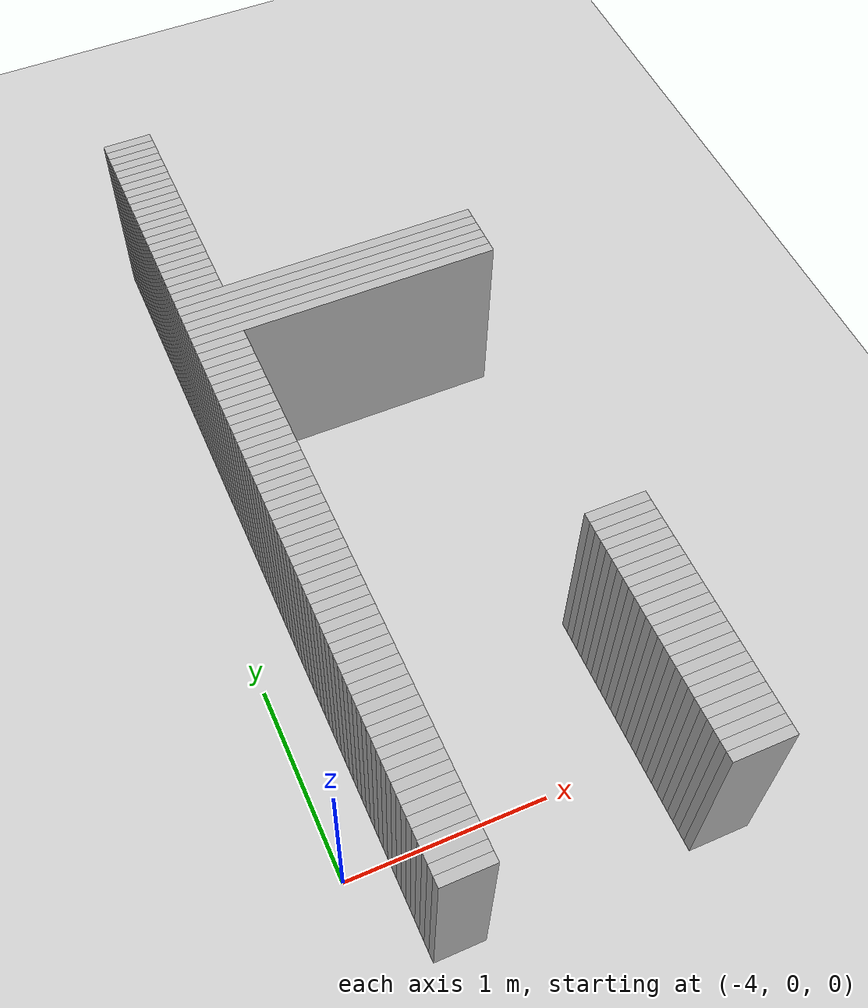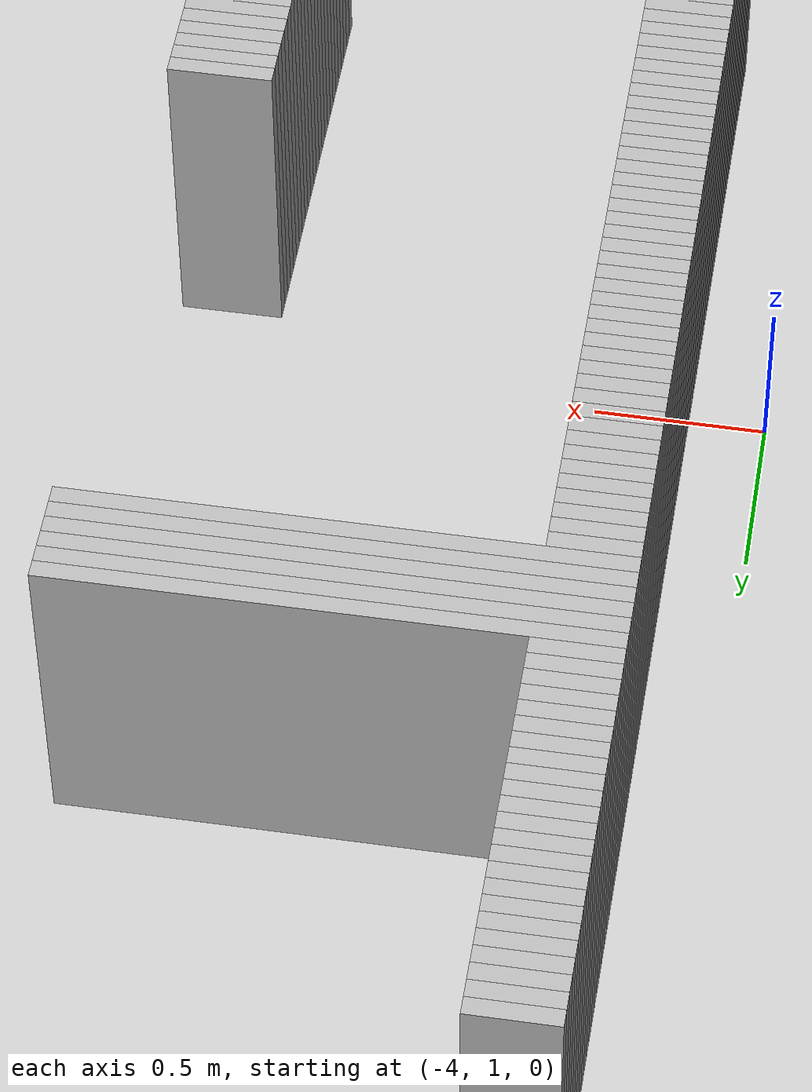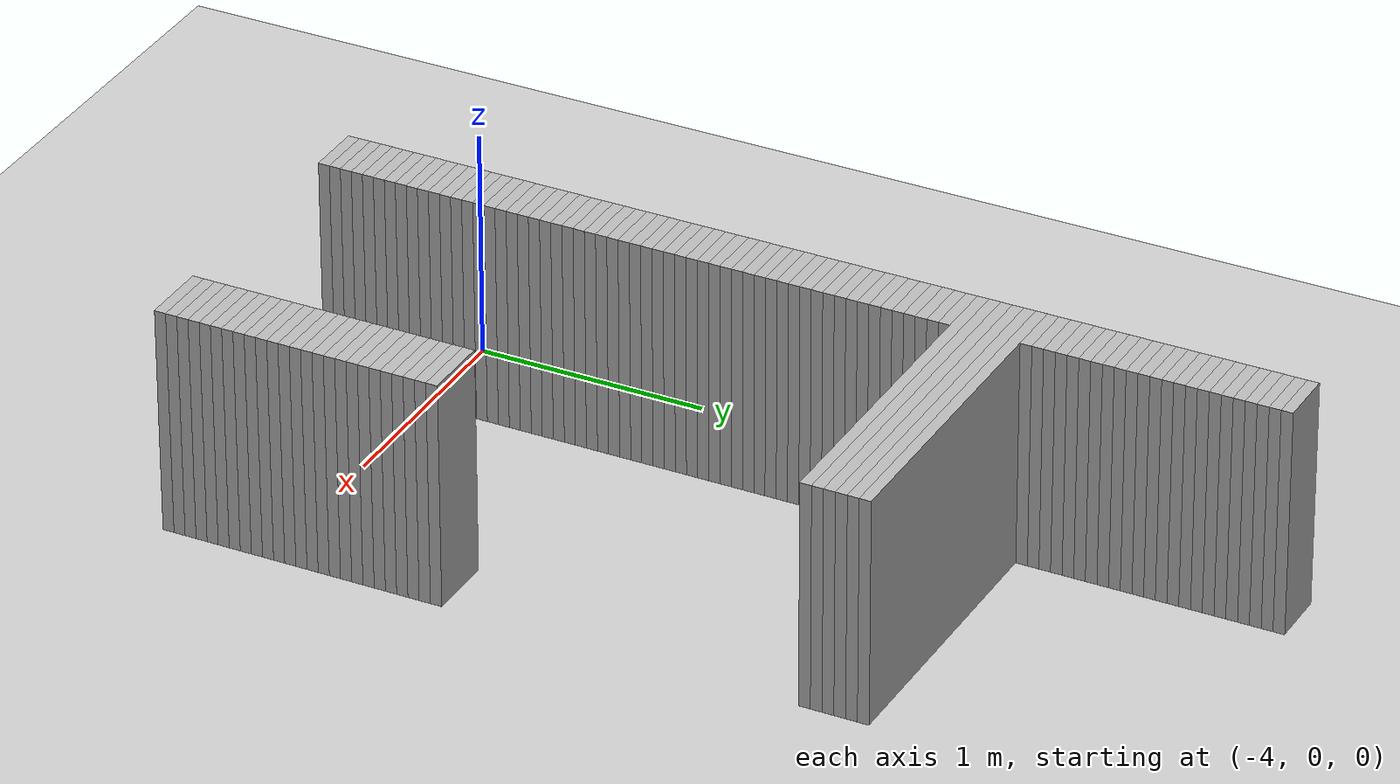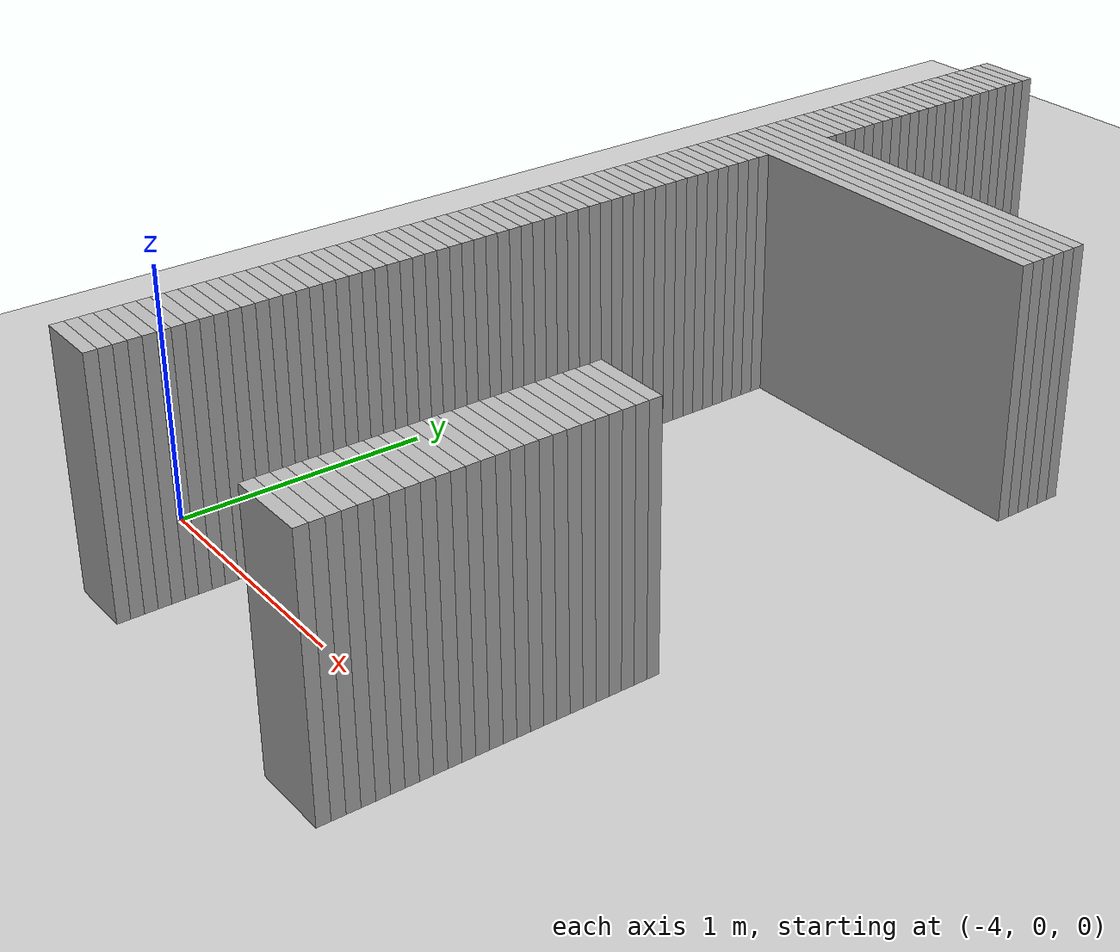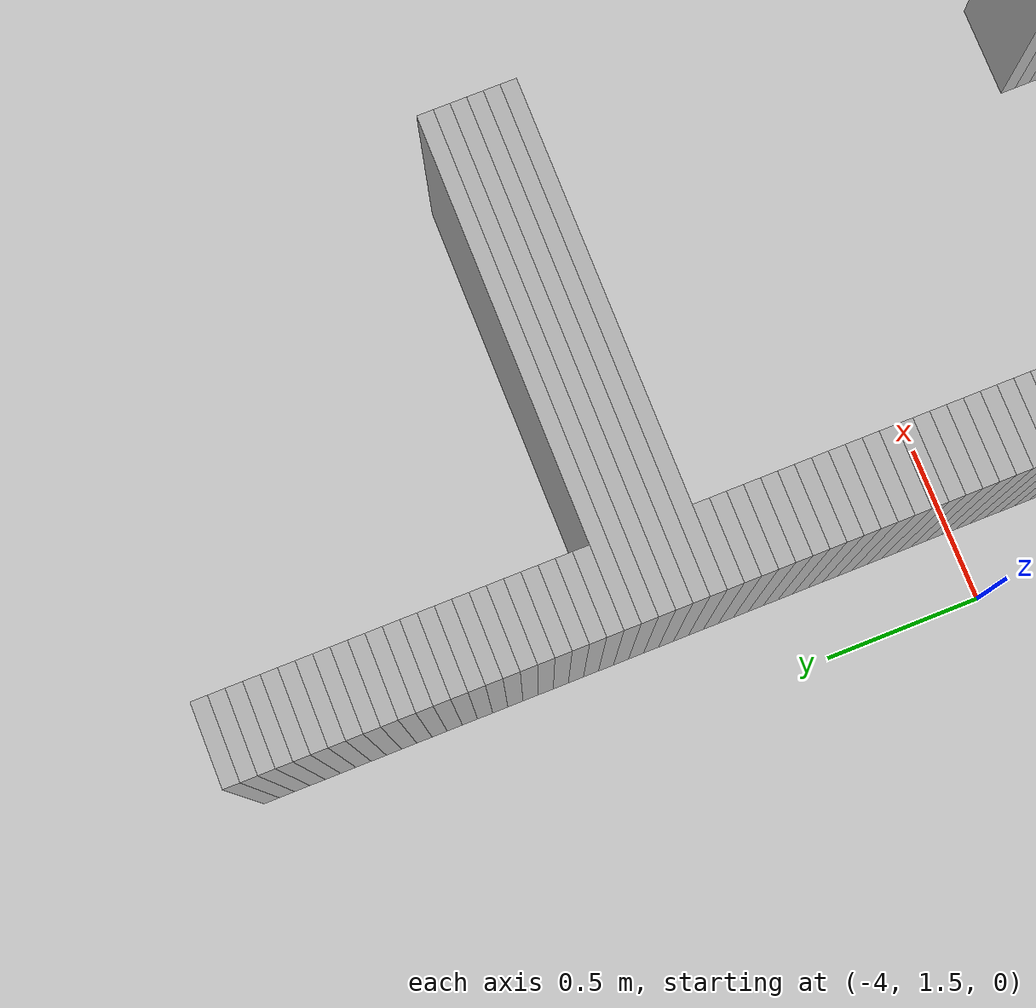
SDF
<sdf version="1.6">
 <world name="maze">
  <include><uri>model://ground_plane</uri></include>
  <include><uri>model://sun</uri></include>
  <model name="wall_0_0">
   <static>true</static>
   <pose>-3.6500000000000004 3.75 0.5 0 0 0</pose>
   <link name="link">
    <collision name="collision"><geometry><box><size>0.25 0.05 1.0</size></box></geometry></collision>
    <visual name="visual"><geometry><box><size>0.25 0.05 1.0</size></box></geometry></visual>
   </link>
  </model>
  <model name="wall_0_1">
   <static>true</static>
   <pose>-3.6500000000000004 3.7 0.5 0 0 0</pose>
   <link name="link">
    <collision name="collision"><geometry><box><size>0.25 0.05 1.0</size></box></geometry></collision>
    <visual name="visual"><geometry><box><size>0.25 0.05 1.0</size></box></geometry></visual>
   </link>
  </model>
  <model name="wall_0_2">
   <static>true</static>
   <pose>-3.6500000000000004 3.6500000000000004 0.5 0 0 0</pose>
   <link name="link">
    <collision name="collision"><geometry><box><size>0.25 0.05 1.0</size></box></geometry></collision>
    <visual name="visual"><geometry><box><size>0.25 0.05 1.0</size></box></geometry></visual>
   </link>
  </model>
  <model name="wall_0_3">
   <static>true</static>
   <pose>-3.6500000000000004 3.6 0.5 0 0 0</pose>
   <link name="link">
    <collision name="collision"><geometry><box><size>0.25 0.05 1.0</size></box></geometry></collision>
    <visual name="visual"><geometry><box><size>0.25 0.05 1.0</size></box></geometry></visual>
   </link>
  </model>
  <model name="wall_0_4">
   <static>true</static>
   <pose>-3.6500000000000004 3.5500000000000003 0.5 0 0 0</pose>
   <link name="link">
    <collision name="collision"><geometry><box><size>0.25 0.05 1.0</size></box></geometry></collision>
    <visual name="visual"><geometry><box><size>0.25 0.05 1.0</size></box></geometry></visual>
   </link>
  </model>
  <model name="wall_0_5">
   <static>true</static>
   <pose>-3.6500000000000004 3.5 0.5 0 0 0</pose>
   <link name="link">
    <collision name="collision"><geometry><box><size>0.25 0.05 1.0</size></box></geometry></collision>
    <visual name="visual"><geometry><box><size>0.25 0.05 1.0</size></box></geometry></visual>
   </link>
  </model>
  <model name="wall_0_6">
   <static>true</static>
   <pose>-3.6500000000000004 3.45 0.5 0 0 0</pose>
   <link name="link">
    <collision name="collision"><geometry><box><size>0.25 0.05 1.0</size></box></geometry></collision>
    <visual name="visual"><geometry><box><size>0.25 0.05 1.0</size></box></geometry></visual>
   </link>
  </model>
  <model name="wall_0_7">
   <static>true</static>
   <pose>-3.6500000000000004 3.4000000000000004 0.5 0 0 0</pose>
   <link name="link">
    <collision name="collision"><geometry><box><size>0.25 0.05 1.0</size></box></geometry></collision>
    <visual name="visual"><geometry><box><size>0.25 0.05 1.0</size></box></geometry></visual>
   </link>
  </model>
  <model name="wall_0_8">
   <static>true</static>
   <pose>-3.6500000000000004 3.35 0.5 0 0 0</pose>
   <link name="link">
    <collision name="collision"><geometry><box><size>0.25 0.05 1.0</size></box></geometry></collision>
    <visual name="visual"><geometry><box><size>0.25 0.05 1.0</size></box></geometry></visual>
   </link>
  </model>
  <model name="wall_0_9">
   <static>true</static>
   <pose>-3.6500000000000004 3.3000000000000003 0.5 0 0 0</pose>
   <link name="link">
    <collision name="collision"><geometry><box><size>0.25 0.05 1.0</size></box></geometry></collision>
    <visual name="visual"><geometry><box><size>0.25 0.05 1.0</size></box></geometry></visual>
   </link>
  </model>
  <model name="wall_0_10">
   <static>true</static>
   <pose>-3.6500000000000004 3.25 0.5 0 0 0</pose>
   <link name="link">
    <collision name="collision"><geometry><box><size>0.25 0.05 1.0</size></box></geometry></collision>
    <visual name="visual"><geometry><box><size>0.25 0.05 1.0</size></box></geometry></visual>
   </link>
  </model>
  <model name="wall_0_11">
   <static>true</static>
   <pose>-3.6500000000000004 3.2 0.5 0 0 0</pose>
   <link name="link">
    <collision name="collision"><geometry><box><size>0.25 0.05 1.0</size></box></geometry></collision>
    <visual name="visual"><geometry><box><size>0.25 0.05 1.0</size></box></geometry></visual>
   </link>
  </model>
  <model name="wall_0_12">
   <static>true</static>
   <pose>-3.6500000000000004 3.1500000000000004 0.5 0 0 0</pose>
   <link name="link">
    <collision name="collision"><geometry><box><size>0.25 0.05 1.0</size></box></geometry></collision>
    <visual name="visual"><geometry><box><size>0.25 0.05 1.0</size></box></geometry></visual>
   </link>
  </model>
  <model name="wall_0_13">
   <static>true</static>
   <pose>-3.6500000000000004 3.1 0.5 0 0 0</pose>
   <link name="link">
    <collision name="collision"><geometry><box><size>0.25 0.05 1.0</size></box></geometry></collision>
    <visual name="visual"><geometry><box><size>0.25 0.05 1.0</size></box></geometry></visual>
   </link>
  </model>
  <model name="wall_0_14">
   <static>true</static>
   <pose>-3.6500000000000004 3.0500000000000003 0.5 0 0 0</pose>
   <link name="link">
    <collision name="collision"><geometry><box><size>0.25 0.05 1.0</size></box></geometry></collision>
    <visual name="visual"><geometry><box><size>0.25 0.05 1.0</size></box></geometry></visual>
   </link>
  </model>
  <model name="wall_0_15">
   <static>true</static>
   <pose>-3.6500000000000004 3.0 0.5 0 0 0</pose>
   <link name="link">
    <collision name="collision"><geometry><box><size>0.25 0.05 1.0</size></box></geometry></collision>
    <visual name="visual"><geometry><box><size>0.25 0.05 1.0</size></box></geometry></visual>
   </link>
  </model>
  <model name="wall_0_16">
   <static>true</static>
   <pose>-3.6500000000000004 2.95 0.5 0 0 0</pose>
   <link name="link">
    <collision name="collision"><geometry><box><size>0.25 0.05 1.0</size></box></geometry></collision>
    <visual name="visual"><geometry><box><size>0.25 0.05 1.0</size></box></geometry></visual>
   </link>
  </model>
  <model name="wall_0_17">
   <static>true</static>
   <pose>-3.6500000000000004 2.9000000000000004 0.5 0 0 0</pose>
   <link name="link">
    <collision name="collision"><geometry><box><size>0.25 0.05 1.0</size></box></geometry></collision>
    <visual name="visual"><geometry><box><size>0.25 0.05 1.0</size></box></geometry></visual>
   </link>
  </model>
  <model name="wall_0_18">
   <static>true</static>
   <pose>-3.6500000000000004 2.85 0.5 0 0 0</pose>
   <link name="link">
    <collision name="collision"><geometry><box><size>0.25 0.05 1.0</size></box></geometry></collision>
    <visual name="visual"><geometry><box><size>0.25 0.05 1.0</size></box></geometry></visual>
   </link>
  </model>
  <model name="wall_0_19">
   <static>true</static>
   <pose>-3.6500000000000004 2.8000000000000003 0.5 0 0 0</pose>
   <link name="link">
    <collision name="collision"><geometry><box><size>0.25 0.05 1.0</size></box></geometry></collision>
    <visual name="visual"><geometry><box><size>0.25 0.05 1.0</size></box></geometry></visual>
   </link>
  </model>
  <model name="wall_0_20">
   <static>true</static>
   <pose>-3.6500000000000004 2.75 0.5 0 0 0</pose>
   <link name="link">
    <collision name="collision"><geometry><box><size>0.25 0.05 1.0</size></box></geometry></collision>
    <visual name="visual"><geometry><box><size>0.25 0.05 1.0</size></box></geometry></visual>
   </link>
  </model>
  <model name="wall_0_21">
   <static>true</static>
   <pose>-3.6500000000000004 2.7 0.5 0 0 0</pose>
   <link name="link">
    <collision name="collision"><geometry><box><size>0.25 0.05 1.0</size></box></geometry></collision>
    <visual name="visual"><geometry><box><size>0.25 0.05 1.0</size></box></geometry></visual>
   </link>
  </model>
  <model name="wall_0_22">
   <static>true</static>
   <pose>-3.6500000000000004 2.6500000000000004 0.5 0 0 0</pose>
   <link name="link">
    <collision name="collision"><geometry><box><size>0.25 0.05 1.0</size></box></geometry></collision>
    <visual name="visual"><geometry><box><size>0.25 0.05 1.0</size></box></geometry></visual>
   </link>
  </model>
  <model name="wall_0_23">
   <static>true</static>
   <pose>-3.0 2.6 0.5 0 0 0</pose>
   <link name="link">
    <collision name="collision"><geometry><box><size>1.55 0.05 1.0</size></box></geometry></collision>
    <visual name="visual"><geometry><box><size>1.55 0.05 1.0</size></box></geometry></visual>
   </link>
  </model>
  <model name="wall_0_24">
   <static>true</static>
   <pose>-3.0 2.5500000000000003 0.5 0 0 0</pose>
   <link name="link">
    <collision name="collision"><geometry><box><size>1.55 0.05 1.0</size></box></geometry></collision>
    <visual name="visual"><geometry><box><size>1.55 0.05 1.0</size></box></geometry></visual>
   </link>
  </model>
  <model name="wall_0_25">
   <static>true</static>
   <pose>-3.0 2.5 0.5 0 0 0</pose>
   <link name="link">
    <collision name="collision"><geometry><box><size>1.55 0.05 1.0</size></box></geometry></collision>
    <visual name="visual"><geometry><box><size>1.55 0.05 1.0</size></box></geometry></visual>
   </link>
  </model>
  <model name="wall_0_26">
   <static>true</static>
   <pose>-3.0 2.45 0.5 0 0 0</pose>
   <link name="link">
    <collision name="collision"><geometry><box><size>1.55 0.05 1.0</size></box></geometry></collision>
    <visual name="visual"><geometry><box><size>1.55 0.05 1.0</size></box></geometry></visual>
   </link>
  </model>
  <model name="wall_0_27">
   <static>true</static>
   <pose>-3.0 2.4000000000000004 0.5 0 0 0</pose>
   <link name="link">
    <collision name="collision"><geometry><box><size>1.55 0.05 1.0</size></box></geometry></collision>
    <visual name="visual"><geometry><box><size>1.55 0.05 1.0</size></box></geometry></visual>
   </link>
  </model>
  <model name="wall_0_28">
   <static>true</static>
   <pose>-3.0 2.35 0.5 0 0 0</pose>
   <link name="link">
    <collision name="collision"><geometry><box><size>1.55 0.05 1.0</size></box></geometry></collision>
    <visual name="visual"><geometry><box><size>1.55 0.05 1.0</size></box></geometry></visual>
   </link>
  </model>
  <model name="wall_0_29">
   <static>true</static>
   <pose>-3.6500000000000004 2.3000000000000003 0.5 0 0 0</pose>
   <link name="link">
    <collision name="collision"><geometry><box><size>0.25 0.05 1.0</size></box></geometry></collision>
    <visual name="visual"><geometry><box><size>0.25 0.05 1.0</size></box></geometry></visual>
   </link>
  </model>
  <model name="wall_0_30">
   <static>true</static>
   <pose>-3.6500000000000004 2.25 0.5 0 0 0</pose>
   <link name="link">
    <collision name="collision"><geometry><box><size>0.25 0.05 1.0</size></box></geometry></collision>
    <visual name="visual"><geometry><box><size>0.25 0.05 1.0</size></box></geometry></visual>
   </link>
  </model>
  <model name="wall_0_31">
   <static>true</static>
   <pose>-3.6500000000000004 2.2 0.5 0 0 0</pose>
   <link name="link">
    <collision name="collision"><geometry><box><size>0.25 0.05 1.0</size></box></geometry></collision>
    <visual name="visual"><geometry><box><size>0.25 0.05 1.0</size></box></geometry></visual>
   </link>
  </model>
  <model name="wall_0_32">
   <static>true</static>
   <pose>-3.6500000000000004 2.15 0.5 0 0 0</pose>
   <link name="link">
    <collision name="collision"><geometry><box><size>0.25 0.05 1.0</size></box></geometry></collision>
    <visual name="visual"><geometry><box><size>0.25 0.05 1.0</size></box></geometry></visual>
   </link>
  </model>
  <model name="wall_0_33">
   <static>true</static>
   <pose>-3.6500000000000004 2.1 0.5 0 0 0</pose>
   <link name="link">
    <collision name="collision"><geometry><box><size>0.25 0.05 1.0</size></box></geometry></collision>
    <visual name="visual"><geometry><box><size>0.25 0.05 1.0</size></box></geometry></visual>
   </link>
  </model>
  <model name="wall_0_34">
   <static>true</static>
   <pose>-3.6500000000000004 2.0500000000000003 0.5 0 0 0</pose>
   <link name="link">
    <collision name="collision"><geometry><box><size>0.25 0.05 1.0</size></box></geometry></collision>
    <visual name="visual"><geometry><box><size>0.25 0.05 1.0</size></box></geometry></visual>
   </link>
  </model>
  <model name="wall_0_35">
   <static>true</static>
   <pose>-3.6500000000000004 2.0 0.5 0 0 0</pose>
   <link name="link">
    <collision name="collision"><geometry><box><size>0.25 0.05 1.0</size></box></geometry></collision>
    <visual name="visual"><geometry><box><size>0.25 0.05 1.0</size></box></geometry></visual>
   </link>
  </model>
  <model name="wall_0_36">
   <static>true</static>
   <pose>-3.6500000000000004 1.9500000000000002 0.5 0 0 0</pose>
   <link name="link">
    <collision name="collision"><geometry><box><size>0.25 0.05 1.0</size></box></geometry></collision>
    <visual name="visual"><geometry><box><size>0.25 0.05 1.0</size></box></geometry></visual>
   </link>
  </model>
  <model name="wall_0_37">
   <static>true</static>
   <pose>-3.6500000000000004 1.9000000000000001 0.5 0 0 0</pose>
   <link name="link">
    <collision name="collision"><geometry><box><size>0.25 0.05 1.0</size></box></geometry></collision>
    <visual name="visual"><geometry><box><size>0.25 0.05 1.0</size></box></geometry></visual>
   </link>
  </model>
  <model name="wall_0_38">
   <static>true</static>
   <pose>-3.6500000000000004 1.85 0.5 0 0 0</pose>
   <link name="link">
    <collision name="collision"><geometry><box><size>0.25 0.05 1.0</size></box></geometry></collision>
    <visual name="visual"><geometry><box><size>0.25 0.05 1.0</size></box></geometry></visual>
   </link>
  </model>
  <model name="wall_0_39">
   <static>true</static>
   <pose>-3.6500000000000004 1.8 0.5 0 0 0</pose>
   <link name="link">
    <collision name="collision"><geometry><box><size>0.25 0.05 1.0</size></box></geometry></collision>
    <visual name="visual"><geometry><box><size>0.25 0.05 1.0</size></box></geometry></visual>
   </link>
  </model>
  <model name="wall_0_40">
   <static>true</static>
   <pose>-3.6500000000000004 1.75 0.5 0 0 0</pose>
   <link name="link">
    <collision name="collision"><geometry><box><size>0.25 0.05 1.0</size></box></geometry></collision>
    <visual name="visual"><geometry><box><size>0.25 0.05 1.0</size></box></geometry></visual>
   </link>
  </model>
  <model name="wall_0_41">
   <static>true</static>
   <pose>-3.6500000000000004 1.7000000000000002 0.5 0 0 0</pose>
   <link name="link">
    <collision name="collision"><geometry><box><size>0.25 0.05 1.0</size></box></geometry></collision>
    <visual name="visual"><geometry><box><size>0.25 0.05 1.0</size></box></geometry></visual>
   </link>
  </model>
  <model name="wall_0_42">
   <static>true</static>
   <pose>-3.6500000000000004 1.6500000000000001 0.5 0 0 0</pose>
   <link name="link">
    <collision name="collision"><geometry><box><size>0.25 0.05 1.0</size></box></geometry></collision>
    <visual name="visual"><geometry><box><size>0.25 0.05 1.0</size></box></geometry></visual>
   </link>
  </model>
  <model name="wall_0_43">
   <static>true</static>
   <pose>-3.6500000000000004 1.6 0.5 0 0 0</pose>
   <link name="link">
    <collision name="collision"><geometry><box><size>0.25 0.05 1.0</size></box></geometry></collision>
    <visual name="visual"><geometry><box><size>0.25 0.05 1.0</size></box></geometry></visual>
   </link>
  </model>
  <model name="wall_0_44">
   <static>true</static>
   <pose>-3.6500000000000004 1.55 0.5 0 0 0</pose>
   <link name="link">
    <collision name="collision"><geometry><box><size>0.25 0.05 1.0</size></box></geometry></collision>
    <visual name="visual"><geometry><box><size>0.25 0.05 1.0</size></box></geometry></visual>
   </link>
  </model>
  <model name="wall_0_45">
   <static>true</static>
   <pose>-3.6500000000000004 1.5 0.5 0 0 0</pose>
   <link name="link">
    <collision name="collision"><geometry><box><size>0.25 0.05 1.0</size></box></geometry></collision>
    <visual name="visual"><geometry><box><size>0.25 0.05 1.0</size></box></geometry></visual>
   </link>
  </model>
  <model name="wall_0_46">
   <static>true</static>
   <pose>-3.6500000000000004 1.4500000000000002 0.5 0 0 0</pose>
   <link name="link">
    <collision name="collision"><geometry><box><size>0.25 0.05 1.0</size></box></geometry></collision>
    <visual name="visual"><geometry><box><size>0.25 0.05 1.0</size></box></geometry></visual>
   </link>
  </model>
  <model name="wall_0_47">
   <static>true</static>
   <pose>-3.6500000000000004 1.4000000000000001 0.5 0 0 0</pose>
   <link name="link">
    <collision name="collision"><geometry><box><size>0.25 0.05 1.0</size></box></geometry></collision>
    <visual name="visual"><geometry><box><size>0.25 0.05 1.0</size></box></geometry></visual>
   </link>
  </model>
  <model name="wall_0_48">
   <static>true</static>
   <pose>-3.6500000000000004 1.35 0.5 0 0 0</pose>
   <link name="link">
    <collision name="collision"><geometry><box><size>0.25 0.05 1.0</size></box></geometry></collision>
    <visual name="visual"><geometry><box><size>0.25 0.05 1.0</size></box></geometry></visual>
   </link>
  </model>
  <model name="wall_0_49">
   <static>true</static>
   <pose>-3.6500000000000004 1.3 0.5 0 0 0</pose>
   <link name="link">
    <collision name="collision"><geometry><box><size>0.25 0.05 1.0</size></box></geometry></collision>
    <visual name="visual"><geometry><box><size>0.25 0.05 1.0</size></box></geometry></visual>
   </link>
  </model>
  <model name="wall_0_50">
   <static>true</static>
   <pose>-3.6500000000000004 1.25 0.5 0 0 0</pose>
   <link name="link">
    <collision name="collision"><geometry><box><size>0.25 0.05 1.0</size></box></geometry></collision>
    <visual name="visual"><geometry><box><size>0.25 0.05 1.0</size></box></geometry></visual>
   </link>
  </model>
  <model name="wall_0_51">
   <static>true</static>
   <pose>-3.6500000000000004 1.2000000000000002 0.5 0 0 0</pose>
   <link name="link">
    <collision name="collision"><geometry><box><size>0.25 0.05 1.0</size></box></geometry></collision>
    <visual name="visual"><geometry><box><size>0.25 0.05 1.0</size></box></geometry></visual>
   </link>
  </model>
  <model name="wall_0_52">
   <static>true</static>
   <pose>-3.6500000000000004 1.1500000000000001 0.5 0 0 0</pose>
   <link name="link">
    <collision name="collision"><geometry><box><size>0.25 0.05 1.0</size></box></geometry></collision>
    <visual name="visual"><geometry><box><size>0.25 0.05 1.0</size></box></geometry></visual>
   </link>
  </model>
  <model name="wall_0_53">
   <static>true</static>
   <pose>-3.6500000000000004 1.1 0.5 0 0 0</pose>
   <link name="link">
    <collision name="collision"><geometry><box><size>0.25 0.05 1.0</size></box></geometry></collision>
    <visual name="visual"><geometry><box><size>0.25 0.05 1.0</size></box></geometry></visual>
   </link>
  </model>
  <model name="wall_0_54">
   <static>true</static>
   <pose>-3.6500000000000004 1.05 0.5 0 0 0</pose>
   <link name="link">
    <collision name="collision"><geometry><box><size>0.25 0.05 1.0</size></box></geometry></collision>
    <visual name="visual"><geometry><box><size>0.25 0.05 1.0</size></box></geometry></visual>
   </link>
  </model>
  <model name="wall_0_55">
   <static>true</static>
   <pose>-3.6500000000000004 1.0 0.5 0 0 0</pose>
   <link name="link">
    <collision name="collision"><geometry><box><size>0.25 0.05 1.0</size></box></geometry></collision>
    <visual name="visual"><geometry><box><size>0.25 0.05 1.0</size></box></geometry></visual>
   </link>
  </model>
  <model name="wall_0_56">
   <static>true</static>
   <pose>-3.6500000000000004 0.9500000000000001 0.5 0 0 0</pose>
   <link name="link">
    <collision name="collision"><geometry><box><size>0.25 0.05 1.0</size></box></geometry></collision>
    <visual name="visual"><geometry><box><size>0.25 0.05 1.0</size></box></geometry></visual>
   </link>
  </model>
  <model name="wall_0_57">
   <static>true</static>
   <pose>-3.6500000000000004 0.9 0.5 0 0 0</pose>
   <link name="link">
    <collision name="collision"><geometry><box><size>0.25 0.05 1.0</size></box></geometry></collision>
    <visual name="visual"><geometry><box><size>0.25 0.05 1.0</size></box></geometry></visual>
   </link>
  </model>
  <model name="wall_0_58">
   <static>true</static>
   <pose>-3.6500000000000004 0.8500000000000001 0.5 0 0 0</pose>
   <link name="link">
    <collision name="collision"><geometry><box><size>0.25 0.05 1.0</size></box></geometry></collision>
    <visual name="visual"><geometry><box><size>0.25 0.05 1.0</size></box></geometry></visual>
   </link>
  </model>
  <model name="wall_0_59">
   <static>true</static>
   <pose>-3.6500000000000004 0.8 0.5 0 0 0</pose>
   <link name="link">
    <collision name="collision"><geometry><box><size>0.25 0.05 1.0</size></box></geometry></collision>
    <visual name="visual"><geometry><box><size>0.25 0.05 1.0</size></box></geometry></visual>
   </link>
  </model>
  <model name="wall_0_60">
   <static>true</static>
   <pose>-3.6500000000000004 0.75 0.5 0 0 0</pose>
   <link name="link">
    <collision name="collision"><geometry><box><size>0.25 0.05 1.0</size></box></geometry></collision>
    <visual name="visual"><geometry><box><size>0.25 0.05 1.0</size></box></geometry></visual>
   </link>
  </model>
  <model name="wall_25_60">
   <static>true</static>
   <pose>-2.375 0.75 0.5 0 0 0</pose>
   <link name="link">
    <collision name="collision">
     <geometry><box><size>0.30000000000000004 0.05 1.0</size></box></geometry>
    </collision>
    <visual name="visual"><geometry><box><size>0.30000000000000004 0.05 1.0</size></box></geometry></visual>
   </link>
  </model>
  <model name="wall_0_61">
   <static>true</static>
   <pose>-3.6500000000000004 0.7000000000000001 0.5 0 0 0</pose>
   <link name="link">
    <collision name="collision"><geometry><box><size>0.25 0.05 1.0</size></box></geometry></collision>
    <visual name="visual"><geometry><box><size>0.25 0.05 1.0</size></box></geometry></visual>
   </link>
  </model>
  <model name="wall_25_61">
   <static>true</static>
   <pose>-2.375 0.7000000000000001 0.5 0 0 0</pose>
   <link name="link">
    <collision name="collision">
     <geometry><box><size>0.30000000000000004 0.05 1.0</size></box></geometry>
    </collision>
    <visual name="visual"><geometry><box><size>0.30000000000000004 0.05 1.0</size></box></geometry></visual>
   </link>
  </model>
  <model name="wall_0_62">
   <static>true</static>
   <pose>-3.6500000000000004 0.65 0.5 0 0 0</pose>
   <link name="link">
    <collision name="collision"><geometry><box><size>0.25 0.05 1.0</size></box></geometry></collision>
    <visual name="visual"><geometry><box><size>0.25 0.05 1.0</size></box></geometry></visual>
   </link>
  </model>
  <model name="wall_25_62">
   <static>true</static>
   <pose>-2.375 0.65 0.5 0 0 0</pose>
   <link name="link">
    <collision name="collision">
     <geometry><box><size>0.30000000000000004 0.05 1.0</size></box></geometry>
    </collision>
    <visual name="visual"><geometry><box><size>0.30000000000000004 0.05 1.0</size></box></geometry></visual>
   </link>
  </model>
  <model name="wall_0_63">
   <static>true</static>
   <pose>-3.6500000000000004 0.6000000000000001 0.5 0 0 0</pose>
   <link name="link">
    <collision name="collision"><geometry><box><size>0.25 0.05 1.0</size></box></geometry></collision>
    <visual name="visual"><geometry><box><size>0.25 0.05 1.0</size></box></geometry></visual>
   </link>
  </model>
  <model name="wall_25_63">
   <static>true</static>
   <pose>-2.375 0.6000000000000001 0.5 0 0 0</pose>
   <link name="link">
    <collision name="collision">
     <geometry><box><size>0.30000000000000004 0.05 1.0</size></box></geometry>
    </collision>
    <visual name="visual"><geometry><box><size>0.30000000000000004 0.05 1.0</size></box></geometry></visual>
   </link>
  </model>
  <model name="wall_0_64">
   <static>true</static>
   <pose>-3.6500000000000004 0.55 0.5 0 0 0</pose>
   <link name="link">
    <collision name="collision"><geometry><box><size>0.25 0.05 1.0</size></box></geometry></collision>
    <visual name="visual"><geometry><box><size>0.25 0.05 1.0</size></box></geometry></visual>
   </link>
  </model>
  <model name="wall_25_64">
   <static>true</static>
   <pose>-2.375 0.55 0.5 0 0 0</pose>
   <link name="link">
    <collision name="collision">
     <geometry><box><size>0.30000000000000004 0.05 1.0</size></box></geometry>
    </collision>
    <visual name="visual"><geometry><box><size>0.30000000000000004 0.05 1.0</size></box></geometry></visual>
   </link>
  </model>
  <model name="wall_0_65">
   <static>true</static>
   <pose>-3.6500000000000004 0.5 0.5 0 0 0</pose>
   <link name="link">
    <collision name="collision"><geometry><box><size>0.25 0.05 1.0</size></box></geometry></collision>
    <visual name="visual"><geometry><box><size>0.25 0.05 1.0</size></box></geometry></visual>
   </link>
  </model>
  <model name="wall_25_65">
   <static>true</static>
   <pose>-2.375 0.5 0.5 0 0 0</pose>
   <link name="link">
    <collision name="collision">
     <geometry><box><size>0.30000000000000004 0.05 1.0</size></box></geometry>
    </collision>
    <visual name="visual"><geometry><box><size>0.30000000000000004 0.05 1.0</size></box></geometry></visual>
   </link>
  </model>
  <model name="wall_0_66">
   <static>true</static>
   <pose>-3.6500000000000004 0.45 0.5 0 0 0</pose>
   <link name="link">
    <collision name="collision"><geometry><box><size>0.25 0.05 1.0</size></box></geometry></collision>
    <visual name="visual"><geometry><box><size>0.25 0.05 1.0</size></box></geometry></visual>
   </link>
  </model>
  <model name="wall_25_66">
   <static>true</static>
   <pose>-2.375 0.45 0.5 0 0 0</pose>
   <link name="link">
    <collision name="collision">
     <geometry><box><size>0.30000000000000004 0.05 1.0</size></box></geometry>
    </collision>
    <visual name="visual"><geometry><box><size>0.30000000000000004 0.05 1.0</size></box></geometry></visual>
   </link>
  </model>
  <model name="wall_0_67">
   <static>true</static>
   <pose>-3.6500000000000004 0.4 0.5 0 0 0</pose>
   <link name="link">
    <collision name="collision"><geometry><box><size>0.25 0.05 1.0</size></box></geometry></collision>
    <visual name="visual"><geometry><box><size>0.25 0.05 1.0</size></box></geometry></visual>
   </link>
  </model>
  <model name="wall_25_67">
   <static>true</static>
   <pose>-2.375 0.4 0.5 0 0 0</pose>
   <link name="link">
    <collision name="collision">
     <geometry><box><size>0.30000000000000004 0.05 1.0</size></box></geometry>
    </collision>
    <visual name="visual"><geometry><box><size>0.30000000000000004 0.05 1.0</size></box></geometry></visual>
   </link>
  </model>
  <model name="wall_0_68">
   <static>true</static>
   <pose>-3.6500000000000004 0.35000000000000003 0.5 0 0 0</pose>
   <link name="link">
    <collision name="collision"><geometry><box><size>0.25 0.05 1.0</size></box></geometry></collision>
    <visual name="visual"><geometry><box><size>0.25 0.05 1.0</size></box></geometry></visual>
   </link>
  </model>
  <model name="wall_25_68">
   <static>true</static>
   <pose>-2.375 0.35000000000000003 0.5 0 0 0</pose>
   <link name="link">
    <collision name="collision">
     <geometry><box><size>0.30000000000000004 0.05 1.0</size></box></geometry>
    </collision>
    <visual name="visual"><geometry><box><size>0.30000000000000004 0.05 1.0</size></box></geometry></visual>
   </link>
  </model>
  <model name="wall_0_69">
   <static>true</static>
   <pose>-3.6500000000000004 0.30000000000000004 0.5 0 0 0</pose>
   <link name="link">
    <collision name="collision"><geometry><box><size>0.25 0.05 1.0</size></box></geometry></collision>
    <visual name="visual"><geometry><box><size>0.25 0.05 1.0</size></box></geometry></visual>
   </link>
  </model>
  <model name="wall_25_69">
   <static>true</static>
   <pose>-2.375 0.30000000000000004 0.5 0 0 0</pose>
   <link name="link">
    <collision name="collision">
     <geometry><box><size>0.30000000000000004 0.05 1.0</size></box></geometry>
    </collision>
    <visual name="visual"><geometry><box><size>0.30000000000000004 0.05 1.0</size></box></geometry></visual>
   </link>
  </model>
  <model name="wall_0_70">
   <static>true</static>
   <pose>-3.6500000000000004 0.25 0.5 0 0 0</pose>
   <link name="link">
    <collision name="collision"><geometry><box><size>0.25 0.05 1.0</size></box></geometry></collision>
    <visual name="visual"><geometry><box><size>0.25 0.05 1.0</size></box></geometry></visual>
   </link>
  </model>
  <model name="wall_25_70">
   <static>true</static>
   <pose>-2.375 0.25 0.5 0 0 0</pose>
   <link name="link">
    <collision name="collision">
     <geometry><box><size>0.30000000000000004 0.05 1.0</size></box></geometry>
    </collision>
    <visual name="visual"><geometry><box><size>0.30000000000000004 0.05 1.0</size></box></geometry></visual>
   </link>
  </model>
  <model name="wall_0_71">
   <static>true</static>
   <pose>-3.6500000000000004 0.2 0.5 0 0 0</pose>
   <link name="link">
    <collision name="collision"><geometry><box><size>0.25 0.05 1.0</size></box></geometry></collision>
    <visual name="visual"><geometry><box><size>0.25 0.05 1.0</size></box></geometry></visual>
   </link>
  </model>
  <model name="wall_25_71">
   <static>true</static>
   <pose>-2.375 0.2 0.5 0 0 0</pose>
   <link name="link">
    <collision name="collision">
     <geometry><box><size>0.30000000000000004 0.05 1.0</size></box></geometry>
    </collision>
    <visual name="visual"><geometry><box><size>0.30000000000000004 0.05 1.0</size></box></geometry></visual>
   </link>
  </model>
  <model name="wall_0_72">
   <static>true</static>
   <pose>-3.6500000000000004 0.15000000000000002 0.5 0 0 0</pose>
   <link name="link">
    <collision name="collision"><geometry><box><size>0.25 0.05 1.0</size></box></geometry></collision>
    <visual name="visual"><geometry><box><size>0.25 0.05 1.0</size></box></geometry></visual>
   </link>
  </model>
  <model name="wall_25_72">
   <static>true</static>
   <pose>-2.375 0.15000000000000002 0.5 0 0 0</pose>
   <link name="link">
    <collision name="collision">
     <geometry><box><size>0.30000000000000004 0.05 1.0</size></box></geometry>
    </collision>
    <visual name="visual"><geometry><box><size>0.30000000000000004 0.05 1.0</size></box></geometry></visual>
   </link>
  </model>
  <model name="wall_0_73">
   <static>true</static>
   <pose>-3.6500000000000004 0.1 0.5 0 0 0</pose>
   <link name="link">
    <collision name="collision"><geometry><box><size>0.25 0.05 1.0</size></box></geometry></collision>
    <visual name="visual"><geometry><box><size>0.25 0.05 1.0</size></box></geometry></visual>
   </link>
  </model>
  <model name="wall_25_73">
   <static>true</static>
   <pose>-2.375 0.1 0.5 0 0 0</pose>
   <link name="link">
    <collision name="collision">
     <geometry><box><size>0.30000000000000004 0.05 1.0</size></box></geometry>
    </collision>
    <visual name="visual"><geometry><box><size>0.30000000000000004 0.05 1.0</size></box></geometry></visual>
   </link>
  </model>
  <model name="wall_0_74">
   <static>true</static>
   <pose>-3.6500000000000004 0.05 0.5 0 0 0</pose>
   <link name="link">
    <collision name="collision"><geometry><box><size>0.25 0.05 1.0</size></box></geometry></collision>
    <visual name="visual"><geometry><box><size>0.25 0.05 1.0</size></box></geometry></visual>
   </link>
  </model>
  <model name="wall_25_74">
   <static>true</static>
   <pose>-2.375 0.05 0.5 0 0 0</pose>
   <link name="link">
    <collision name="collision">
     <geometry><box><size>0.30000000000000004 0.05 1.0</size></box></geometry>
    </collision>
    <visual name="visual"><geometry><box><size>0.30000000000000004 0.05 1.0</size></box></geometry></visual>
   </link>
  </model>
  <model name="wall_0_75">
   <static>true</static>
   <pose>-3.6500000000000004 0.0 0.5 0 0 0</pose>
   <link name="link">
    <collision name="collision"><geometry><box><size>0.25 0.05 1.0</size></box></geometry></collision>
    <visual name="visual"><geometry><box><size>0.25 0.05 1.0</size></box></geometry></visual>
   </link>
  </model>
  <model name="wall_25_75">
   <static>true</static>
   <pose>-2.375 0.0 0.5 0 0 0</pose>
   <link name="link">
    <collision name="collision">
     <geometry><box><size>0.30000000000000004 0.05 1.0</size></box></geometry>
    </collision>
    <visual name="visual"><geometry><box><size>0.30000000000000004 0.05 1.0</size></box></geometry></visual>
   </link>
  </model>
  <model name="wall_0_76">
   <static>true</static>
   <pose>-3.6500000000000004 -0.05 0.5 0 0 0</pose>
   <link name="link">
    <collision name="collision"><geometry><box><size>0.25 0.05 1.0</size></box></geometry></collision>
    <visual name="visual"><geometry><box><size>0.25 0.05 1.0</size></box></geometry></visual>
   </link>
  </model>
  <model name="wall_25_76">
   <static>true</static>
   <pose>-2.375 -0.05 0.5 0 0 0</pose>
   <link name="link">
    <collision name="collision">
     <geometry><box><size>0.30000000000000004 0.05 1.0</size></box></geometry>
    </collision>
    <visual name="visual"><geometry><box><size>0.30000000000000004 0.05 1.0</size></box></geometry></visual>
   </link>
  </model>
  <model name="wall_0_77">
   <static>true</static>
   <pose>-3.6500000000000004 -0.1 0.5 0 0 0</pose>
   <link name="link">
    <collision name="collision"><geometry><box><size>0.25 0.05 1.0</size></box></geometry></collision>
    <visual name="visual"><geometry><box><size>0.25 0.05 1.0</size></box></geometry></visual>
   </link>
  </model>
  <model name="wall_25_77">
   <static>true</static>
   <pose>-2.375 -0.1 0.5 0 0 0</pose>
   <link name="link">
    <collision name="collision">
     <geometry><box><size>0.30000000000000004 0.05 1.0</size></box></geometry>
    </collision>
    <visual name="visual"><geometry><box><size>0.30000000000000004 0.05 1.0</size></box></geometry></visual>
   </link>
  </model>
  <model name="wall_0_78">
   <static>true</static>
   <pose>-3.6500000000000004 -0.15000000000000002 0.5 0 0 0</pose>
   <link name="link">
    <collision name="collision"><geometry><box><size>0.25 0.05 1.0</size></box></geometry></collision>
    <visual name="visual"><geometry><box><size>0.25 0.05 1.0</size></box></geometry></visual>
   </link>
  </model>
  <model name="wall_25_78">
   <static>true</static>
   <pose>-2.375 -0.15000000000000002 0.5 0 0 0</pose>
   <link name="link">
    <collision name="collision">
     <geometry><box><size>0.30000000000000004 0.05 1.0</size></box></geometry>
    </collision>
    <visual name="visual"><geometry><box><size>0.30000000000000004 0.05 1.0</size></box></geometry></visual>
   </link>
  </model>
  <model name="wall_0_79">
   <static>true</static>
   <pose>-3.6500000000000004 -0.2 0.5 0 0 0</pose>
   <link name="link">
    <collision name="collision"><geometry><box><size>0.25 0.05 1.0</size></box></geometry></collision>
    <visual name="visual"><geometry><box><size>0.25 0.05 1.0</size></box></geometry></visual>
   </link>
  </model>
  <model name="wall_25_79">
   <static>true</static>
   <pose>-2.375 -0.2 0.5 0 0 0</pose>
   <link name="link">
    <collision name="collision">
     <geometry><box><size>0.30000000000000004 0.05 1.0</size></box></geometry>
    </collision>
    <visual name="visual"><geometry><box><size>0.30000000000000004 0.05 1.0</size></box></geometry></visual>
   </link>
  </model>
  <model name="wall_0_80">
   <static>true</static>
   <pose>-3.6500000000000004 -0.25 0.5 0 0 0</pose>
   <link name="link">
    <collision name="collision"><geometry><box><size>0.25 0.05 1.0</size></box></geometry></collision>
    <visual name="visual"><geometry><box><size>0.25 0.05 1.0</size></box></geometry></visual>
   </link>
  </model>
  <model name="wall_25_80">
   <static>true</static>
   <pose>-2.375 -0.25 0.5 0 0 0</pose>
   <link name="link">
    <collision name="collision">
     <geometry><box><size>0.30000000000000004 0.05 1.0</size></box></geometry>
    </collision>
    <visual name="visual"><geometry><box><size>0.30000000000000004 0.05 1.0</size></box></geometry></visual>
   </link>
  </model>
  <model name="wall_0_81">
   <static>true</static>
   <pose>-3.6500000000000004 -0.30000000000000004 0.5 0 0 0</pose>
   <link name="link">
    <collision name="collision"><geometry><box><size>0.25 0.05 1.0</size></box></geometry></collision>
    <visual name="visual"><geometry><box><size>0.25 0.05 1.0</size></box></geometry></visual>
   </link>
  </model>
  <model name="wall_25_81">
   <static>true</static>
   <pose>-2.375 -0.30000000000000004 0.5 0 0 0</pose>
   <link name="link">
    <collision name="collision">
     <geometry><box><size>0.30000000000000004 0.05 1.0</size></box></geometry>
    </collision>
    <visual name="visual"><geometry><box><size>0.30000000000000004 0.05 1.0</size></box></geometry></visual>
   </link>
  </model>
  <model name="wall_0_82">
   <static>true</static>
   <pose>-3.6500000000000004 -0.35000000000000003 0.5 0 0 0</pose>
   <link name="link">
    <collision name="collision"><geometry><box><size>0.25 0.05 1.0</size></box></geometry></collision>
    <visual name="visual"><geometry><box><size>0.25 0.05 1.0</size></box></geometry></visual>
   </link>
  </model>
  <model name="wall_25_82">
   <static>true</static>
   <pose>-2.375 -0.35000000000000003 0.5 0 0 0</pose>
   <link name="link">
    <collision name="collision">
     <geometry><box><size>0.30000000000000004 0.05 1.0</size></box></geometry>
    </collision>
    <visual name="visual"><geometry><box><size>0.30000000000000004 0.05 1.0</size></box></geometry></visual>
   </link>
  </model>
  <model name="wall_0_83">
   <static>true</static>
   <pose>-3.6500000000000004 -0.4 0.5 0 0 0</pose>
   <link name="link">
    <collision name="collision"><geometry><box><size>0.25 0.05 1.0</size></box></geometry></collision>
    <visual name="visual"><geometry><box><size>0.25 0.05 1.0</size></box></geometry></visual>
   </link>
  </model>
  <model name="wall_25_83">
   <static>true</static>
   <pose>-2.375 -0.4 0.5 0 0 0</pose>
   <link name="link">
    <collision name="collision">
     <geometry><box><size>0.30000000000000004 0.05 1.0</size></box></geometry>
    </collision>
    <visual name="visual"><geometry><box><size>0.30000000000000004 0.05 1.0</size></box></geometry></visual>
   </link>
  </model>
  <model name="wall_0_84">
   <static>true</static>
   <pose>-3.6500000000000004 -0.45 0.5 0 0 0</pose>
   <link name="link">
    <collision name="collision"><geometry><box><size>0.25 0.05 1.0</size></box></geometry></collision>
    <visual name="visual"><geometry><box><size>0.25 0.05 1.0</size></box></geometry></visual>
   </link>
  </model>
  <model name="wall_25_84">
   <static>true</static>
   <pose>-2.375 -0.45 0.5 0 0 0</pose>
   <link name="link">
    <collision name="collision">
     <geometry><box><size>0.30000000000000004 0.05 1.0</size></box></geometry>
    </collision>
    <visual name="visual"><geometry><box><size>0.30000000000000004 0.05 1.0</size></box></geometry></visual>
   </link>
  </model>
 </world>
</sdf>
